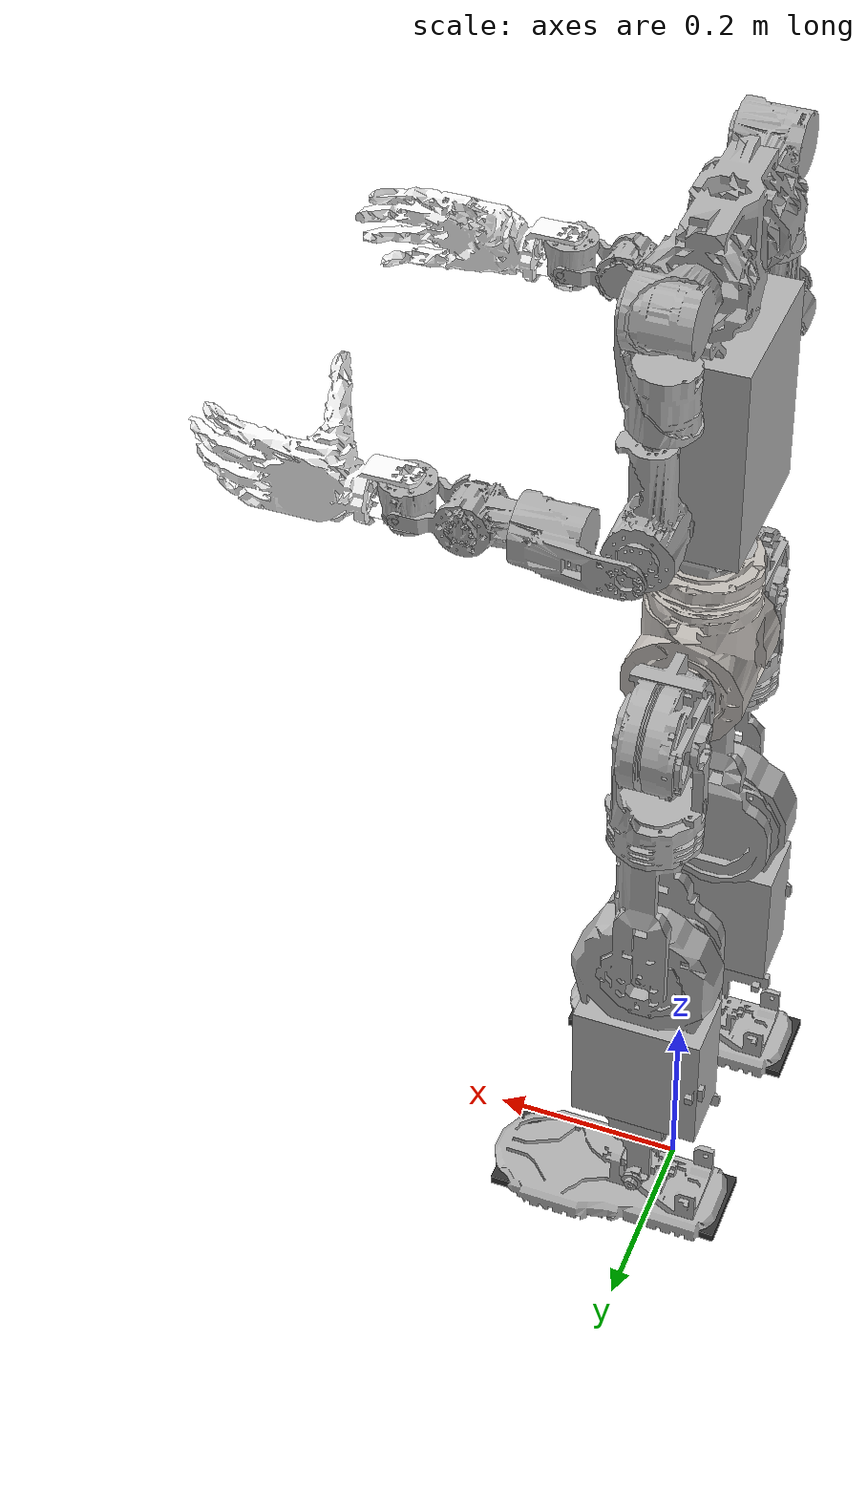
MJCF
<mujoco model="ym1_16dof">
  <compiler angle="radian" meshdir="meshes" autolimits="true"/>

  <option iterations='50' solver='PGS' gravity='0 0 -9.81'>
    <flag frictionloss="enable"/>
  </option>

  <default>
    <joint damping="0.001" armature="0.01" frictionloss="0.1"/>
  </default>

  <asset>
    <mesh name="pelvis" file="base_link.STL"/>
    <mesh name="torso" file="waist_yaw_link.STL"/>
    <mesh name="left_leg_pitch_link" file="left_leg_pitch_link.STL"/>
    <mesh name="left_leg_roll_link" file="left_leg_roll_link.STL"/>
    <mesh name="left_leg_yaw_link" file="left_leg_yaw_link.STL"/>
    <mesh name="left_knee_pitch_link" file="left_knee_pitch_link.STL"/>
    <mesh name="left_ankle_pitch_link" file="left_ankle_pitch_link.STL"/>
    <mesh name="left_ankle_roll_link" file="left_ankle_roll_link.STL"/>
    <mesh name="right_leg_pitch_link" file="right_leg_pitch_link.STL"/>
    <mesh name="right_leg_roll_link" file="right_leg_roll_link.STL"/>
    <mesh name="right_leg_yaw_link" file="right_leg_yaw_link.STL"/>
    <mesh name="right_knee_pitch_link" file="right_knee_pitch_link.STL"/>
    <mesh name="right_ankle_pitch_link" file="right_ankle_pitch_link.STL"/>
    <mesh name="right_ankle_roll_link" file="right_ankle_roll_link.STL"/>
    <mesh name="left_shoulder_pitch_link" file="left_shoulder_pitch_link.STL"/>
    <mesh name="left_shoulder_roll_link" file="left_shoulder_roll_link.STL"/>
    <mesh name="left_shoulder_yaw_link" file="left_shoulder_yaw_link.STL"/>
    <mesh name="left_elbow_pitch_link" file="left_elbow_pitch_link.STL"/>
    <mesh name="left_elbow_roll_link" file="left_elbow_roll_link.STL"/>
    <mesh name="left_wrist_pitch_link" file="left_wrist_pitch_link.STL"/>
    <mesh name="left_wrist_yaw_link" file="left_wrist_yaw_link.STL"/>
    <mesh name="right_shoulder_pitch_link" file="right_shoulder_pitch_link.STL"/>
    <mesh name="right_shoulder_roll_link" file="right_shoulder_roll_link.STL"/>
    <mesh name="right_shoulder_yaw_link" file="right_shoulder_yaw_link.STL"/>
    <mesh name="right_elbow_pitch_link" file="right_elbow_pitch_link.STL"/>
    <mesh name="right_elbow_roll_link" file="right_elbow_roll_link.STL"/>
    <mesh name="right_wrist_pitch_link" file="right_wrist_pitch_link.STL"/>
    <mesh name="right_wrist_yaw_link" file="right_wrist_yaw_link.STL"/>
  </asset>

  <worldbody>
    <body name="pelvis" pos="0 0 0.78">
      <camera name="depth_cam"
        pos="0.0576235 0.01753 0.42987"
        euler="0 -0.79 0"
        fovy="79.3"
        mode="fixed"/>
      <inertial pos="4.6721e-06 -2.3326e-07 -0.030542" mass="3.13"
                diaginertia="0.010908 0.010341 0.006614"/>
      <joint name="floating_base_joint" type="free" limited="false" actuatorfrclimited="false"/>
      <geom type="mesh" contype="0" conaffinity="0" group="1" density="0" rgba="0.77 0.75 0.73 1" mesh="pelvis"/>

      <!-- Torso (fixed to pelvis) -->
      <geom pos="0 0 0.05725" type="mesh" contype="0" conaffinity="0" group="1" density="0" rgba="0.7 0.7 0.7 1" mesh="torso"/>
      <geom pos="0 0 0.20725" type="box" size="0.05 0.075 0.1" rgba="0.7 0.7 0.7 1"/>

      <!-- Left Leg -->
      <body name="left_leg_pitch_link" pos="0 0.057 -0.06025">
        <inertial pos="-0.0022424 0.052941 0.0018571" mass="1.06"
                  diaginertia="0.0019452 0.0012366 0.0015468"/>
        <joint name="left_leg_pitch_joint" pos="0 0 0" axis="0 1 0" range="-2.792 2.792" actuatorfrcrange="-90 90"/>
        <geom type="mesh" contype="0" conaffinity="0" group="1" density="0" rgba="0.7 0.7 0.7 1" mesh="left_leg_pitch_link"/>

        <body name="left_leg_roll_link" pos="0 0.06 0">
          <inertial pos="0.002441 3.17e-05 -0.092183" mass="0.8"
                    diaginertia="0.0015404 0.001629 0.00094122"/>
          <joint name="left_leg_roll_joint" pos="0 0 0" axis="1 0 0" range="-0.087 3.037" actuatorfrcrange="-90 90"/>
          <geom type="mesh" contype="0" conaffinity="0" group="1" density="0" rgba="0.7 0.7 0.7 1" mesh="left_leg_roll_link"/>
          <geom type="mesh" rgba="0.7 0.7 0.7 1" mesh="left_leg_roll_link"/>

          <body name="left_leg_yaw_link" pos="0 0 -0.127">
            <inertial pos="0.0010862 -0.00087371 -0.15709" mass="2.93"
                      diaginertia="0.0082847 0.009843 0.0036644"/>
            <joint name="left_leg_yaw_joint" pos="0 0 0" axis="0 0 1" range="-2.269 2.269" actuatorfrcrange="-60 60"/>
            <geom type="mesh" contype="0" conaffinity="0" group="1" density="0" rgba="0.7 0.7 0.7 1" mesh="left_leg_yaw_link"/>
            <geom type="mesh" rgba="0.7 0.7 0.7 1" mesh="left_leg_yaw_link"/>

            <body name="left_knee_pitch_link" pos="0 0 -0.173">
              <inertial pos="-0.0032204 0.0014598 -0.13449" mass="2.19"
                        diaginertia="0.016813 0.017944 0.0029858"/>
              <joint name="left_knee_pitch_joint" pos="0 0 0" axis="0 1 0" range="-0.052 2.618" actuatorfrcrange="-150 150"/>
              <geom type="mesh" contype="0" conaffinity="0" group="1" density="0" rgba="0.7 0.7 0.7 1" mesh="left_knee_pitch_link"/>
              <geom pos="0 0 -0.13" type="box" size="0.065 0.035 0.07" rgba="0.7 0.7 0.7 1"/>

              <body name="left_ankle_pitch_link" pos="0 0 -0.3">
                <inertial pos="0 0 0" mass="0.16" diaginertia="0.03 0.03 0.03"/>
                <joint name="left_ankle_pitch_joint" pos="0 0 0" axis="0 1 0" range="-2.094 2.094" actuatorfrcrange="-36 36"/>
                <geom type="mesh" contype="0" conaffinity="0" group="1" density="0" rgba="0.7 0.7 0.7 1" mesh="left_ankle_pitch_link"/>

                <body name="left_ankle_roll_link" pos="0 0 0">
                  <inertial pos="0.018367 0 -0.022988" mass="1.01" diaginertia="0.01 0.01 0.01"/>
                  <joint name="left_ankle_roll_joint" pos="0 0 0" axis="1 0 0" range="-0.349 0.349" actuatorfrcrange="-36 36"/>
                  <geom type="mesh" contype="0" conaffinity="0" group="1" density="0" rgba="0.7 0.7 0.7 1" mesh="left_ankle_roll_link"/>
                  <geom size="0.055 0.05 0.005" pos="0.0925 0 -0.038" type="box" rgba="0.2 0.2 0.2 1"/>
                  <geom size="0.065 0.04 0.005" pos="-0.0285 0 -0.038" type="box" rgba="0.2 0.2 0.2 1"/>

                </body>
              </body>
            </body>
          </body>
        </body>
      </body>

      <!-- Right Leg -->
      <body name="right_leg_pitch_link" pos="0 -0.057 -0.06025">
        <inertial pos="-0.0022424 -0.052767 0.0018571" mass="1.06"
                  diaginertia="0.0019426 0.0012366 0.0015442"/>
        <joint name="right_leg_pitch_joint" pos="0 0 0" axis="0 1 0" range="-2.792 2.792" actuatorfrcrange="-90 90"/>
        <geom type="mesh" contype="0" conaffinity="0" group="1" density="0" rgba="0.7 0.7 0.7 1" mesh="right_leg_pitch_link"/>

        <body name="right_leg_roll_link" pos="0 -0.06 0">
          <inertial pos="0.002441 3.17e-05 -0.092183" mass="0.8"
                    diaginertia="0.0015404 0.001629 0.00094122"/>
          <joint name="right_leg_roll_joint" pos="0 0 0" axis="1 0 0" range="-3.037 0.087" actuatorfrcrange="-90 90"/>
          <geom type="mesh" contype="0" conaffinity="0" group="1" density="0" rgba="0.7 0.7 0.7 1" mesh="right_leg_roll_link"/>
          <geom type="mesh" rgba="0.7 0.7 0.7 1" mesh="right_leg_roll_link"/>

          <body name="right_leg_yaw_link" pos="0 0 -0.127">
            <inertial pos="0.0010862 0.00087371 -0.15709" mass="2.93"
                      diaginertia="0.0082847 0.009843 0.0036644"/>
            <joint name="right_leg_yaw_joint" pos="0 0 0" axis="0 0 1" range="-2.269 2.269" actuatorfrcrange="-60 60"/>
            <geom type="mesh" contype="0" conaffinity="0" group="1" density="0" rgba="0.7 0.7 0.7 1" mesh="right_leg_yaw_link"/>
            <geom type="mesh" rgba="0.7 0.7 0.7 1" mesh="right_leg_yaw_link"/>

            <body name="right_knee_pitch_link" pos="0 0 -0.173">
              <inertial pos="-0.0032204 -0.0014598 -0.13449" mass="2.19"
                        diaginertia="0.016812 0.017943 0.0029855"/>
              <joint name="right_knee_pitch_joint" pos="0 0 0" axis="0 1 0" range="-0.052 2.618" actuatorfrcrange="-150 150"/>
              <geom type="mesh" contype="0" conaffinity="0" group="1" density="0" rgba="0.7 0.7 0.7 1" mesh="right_knee_pitch_link"/>
              <geom pos="0 0 -0.13" type="box" size="0.065 0.035 0.07" rgba="0.7 0.7 0.7 1"/>

              <body name="right_ankle_pitch_link" pos="0 0 -0.3">
                <inertial pos="0 0 0" mass="0.16" diaginertia="0.03 0.03 0.03"/>
                <joint name="right_ankle_pitch_joint" pos="0 0 0" axis="0 1 0" range="-2.094 2.094" actuatorfrcrange="-36 36"/>
                <geom type="mesh" contype="0" conaffinity="0" group="1" density="0" rgba="0.7 0.7 0.7 1" mesh="right_ankle_pitch_link"/>

                <body name="right_ankle_roll_link" pos="0 0 0">
                  <inertial pos="0.018366 0 -0.023002" mass="1.01" diaginertia="0.01 0.01 0.01"/>
                  <joint name="right_ankle_roll_joint" pos="0 0 0" axis="1 0 0" range="-0.349 0.349" actuatorfrcrange="-36 36"/>
                  <geom type="mesh" contype="0" conaffinity="0" group="1" density="0" rgba="0.7 0.7 0.7 1" mesh="right_ankle_roll_link"/>
                  <geom size="0.055 0.05 0.005" pos="0.0925 0 -0.038" type="box" rgba="0.2 0.2 0.2 1"/>
                  <geom size="0.065 0.04 0.005" pos="-0.0285 0 -0.038" type="box" rgba="0.2 0.2 0.2 1"/>
                </body>
              </body>
            </body>
          </body>
        </body>
      </body>

      <!-- Left Arm -->
      <body name="left_shoulder_pitch_link" pos="0 0.079102 0.37797" quat="0.991 0.131 0 0">
        <inertial pos="0.0074125 0.055258 2.03e-05" mass="0.51"
                  diaginertia="0.00040726 0.00033867 0.00048429"/>
        <joint name="left_shoulder_pitch_joint" pos="0 0 0" axis="0 1 0" range="-1.57 1.57" actuatorfrcrange="-60 60"/>
        <geom type="mesh" contype="0" conaffinity="0" group="1" density="0" rgba="0.7 0.7 0.7 1" mesh="left_shoulder_pitch_link"/>
        <geom pos="0 0.064 0" quat="0.991 -0.131 0 0" type="mesh" contype="0" conaffinity="0" group="1" density="0" rgba="0.7 0.7 0.7 1" mesh="left_shoulder_roll_link"/>
        <geom pos="0.00013761 0.064 -0.103" quat="0.991 -0.131 0 0" type="mesh" contype="0" conaffinity="0" group="1" density="0" rgba="0.7 0.7 0.7 1" mesh="left_shoulder_yaw_link"/>

        <body name="left_elbow_pitch_link" pos="0 0.064 -0.2" quat="0.991 -0.131 0 0">
          <inertial pos="0.073356 0.0084377 7.54e-06" mass="0.64"
                    diaginertia="0.00039885 0.00064086 0.00071392"/>
          <joint name="left_elbow_pitch_joint" pos="0 0 0" axis="0 1 0" range="-1.57 1.57" actuatorfrcrange="-36 36"/>
          <geom type="mesh" contype="0" conaffinity="0" group="1" density="0" rgba="0.7 0.7 0.7 1" mesh="left_elbow_pitch_link"/>
          <geom type="mesh" rgba="0.7 0.7 0.7 1" mesh="left_elbow_pitch_link"/>
          <geom pos="0.103 -0.00013761 0" type="mesh" contype="0" conaffinity="0" group="1" density="0" rgba="0.7 0.7 0.7 1" mesh="left_elbow_roll_link"/>
          <geom pos="0.2 0 0" type="mesh" contype="0" conaffinity="0" group="1" density="0" rgba="0.7 0.7 0.7 1" mesh="left_wrist_pitch_link"/>
          <geom pos="0.2 0 0" type="mesh" contype="0" conaffinity="0" group="1" density="0" rgba="1 1 1 1" mesh="left_wrist_yaw_link"/>
        </body>
      </body>

      <!-- Right Arm -->
      <body name="right_shoulder_pitch_link" pos="0 -0.079102 0.37797" quat="0.991 -0.131 0 0">
        <inertial pos="0.0074125 -0.055258 1.602e-05" mass="0.51"
                  diaginertia="0.00040726 0.00033867 0.00048429"/>
        <joint name="right_shoulder_pitch_joint" pos="0 0 0" axis="0 1 0" range="-1.57 1.57" actuatorfrcrange="-60 60"/>
        <geom type="mesh" contype="0" conaffinity="0" group="1" density="0" rgba="0.7 0.7 0.7 1" mesh="right_shoulder_pitch_link"/>
        <geom pos="0 -0.064 0" quat="0.991 0.131 0 0" type="mesh" contype="0" conaffinity="0" group="1" density="0" rgba="0.7 0.7 0.7 1" mesh="right_shoulder_roll_link"/>
        <geom pos="0.00013761 -0.064 -0.103" quat="0.991 0.131 0 0" type="mesh" contype="0" conaffinity="0" group="1" density="0" rgba="0.7 0.7 0.7 1" mesh="right_shoulder_yaw_link"/>

        <body name="right_elbow_pitch_link" pos="0 -0.064 -0.2" quat="0.991 0.131 0 0">
          <inertial pos="0.073356 -0.0084377 7.54e-06" mass="0.64"
                    diaginertia="0.00039885 0.00064086 0.00071392"/>
          <joint name="right_elbow_pitch_joint" pos="0 0 0" axis="0 1 0" range="-1.57 1.57" actuatorfrcrange="-36 36"/>
          <geom type="mesh" contype="0" conaffinity="0" group="1" density="0" rgba="0.7 0.7 0.7 1" mesh="right_elbow_pitch_link"/>
          <geom type="mesh" rgba="0.7 0.7 0.7 1" mesh="right_elbow_pitch_link"/>
          <geom pos="0.103 0.00013761 0" type="mesh" contype="0" conaffinity="0" group="1" density="0" rgba="0.7 0.7 0.7 1" mesh="right_elbow_roll_link"/>
          <geom pos="0.2 0 0" type="mesh" contype="0" conaffinity="0" group="1" density="0" rgba="0.7 0.7 0.7 1" mesh="right_wrist_pitch_link"/>
          <geom pos="0.2 0 0" type="mesh" contype="0" conaffinity="0" group="1" density="0" rgba="1 1 1 1" mesh="right_wrist_yaw_link"/>
        </body>
      </body>
    </body>
  </worldbody>

  <actuator>
    <motor name="left_leg_pitch_joint" joint="left_leg_pitch_joint"/>
    <motor name="left_leg_roll_joint" joint="left_leg_roll_joint"/>
    <motor name="left_leg_yaw_joint" joint="left_leg_yaw_joint"/>
    <motor name="left_knee_pitch_joint" joint="left_knee_pitch_joint"/>
    <motor name="left_ankle_pitch_joint" joint="left_ankle_pitch_joint"/>
    <motor name="left_ankle_roll_joint" joint="left_ankle_roll_joint"/>
    <motor name="right_leg_pitch_joint" joint="right_leg_pitch_joint"/>
    <motor name="right_leg_roll_joint" joint="right_leg_roll_joint"/>
    <motor name="right_leg_yaw_joint" joint="right_leg_yaw_joint"/>
    <motor name="right_knee_pitch_joint" joint="right_knee_pitch_joint"/>
    <motor name="right_ankle_pitch_joint" joint="right_ankle_pitch_joint"/>
    <motor name="right_ankle_roll_joint" joint="right_ankle_roll_joint"/>
    <motor name="left_shoulder_pitch_joint" joint="left_shoulder_pitch_joint"/>
    <motor name="left_elbow_pitch_joint" joint="left_elbow_pitch_joint"/>
    <motor name="right_shoulder_pitch_joint" joint="right_shoulder_pitch_joint"/>
    <motor name="right_elbow_pitch_joint" joint="right_elbow_pitch_joint"/>
  </actuator>

</mujoco>
